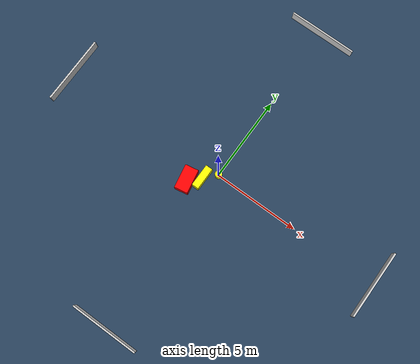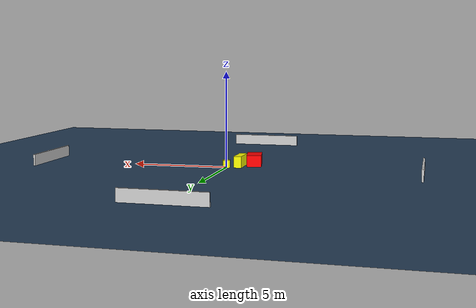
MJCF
<?xml version="1.0" ?>
<mujoco model="generated_environment">
  <option timestep="0.01" integrator="RK4" cone="elliptic"/>
  <default>
    <geom density="1"/>
  </default>
  <asset>
    <texture builtin="gradient" height="3072" name="skybox" rgb1="0.3 0.5 0.7" rgb2="0 0 0" type="skybox" width="512"/>
    <texture builtin="checker" height="300" name="groundplane" rgb1="0.2 0.3 0.4" rgb2="0.1 0.2 0.3" type="2d" width="300"/>
    <material name="groundplane" reflectance="0.2" texrepeat="5 5" texture="groundplane"/>
  </asset>
  <worldbody>
    <light dir="0 0 -1" directional="true" pos="0 0 1.5"/>
    <geom condim="3" friction="0.5 0.005 0.001" material="groundplane" name="floor" pos="0 0 0" size="0 0 0.05" type="plane"/>
    <body name="walls">
      <geom name="wall_1" condim="4" pos="-10.0 0.0 0.3" rgba="0.800000011920929 0.800000011920929 0.800000011920929 1.0" size="0.05 2.0 0.3" type="box"/>
      <geom name="wall_2" condim="4" pos="10.0 0.0 0.3" rgba="0.800000011920929 0.800000011920929 0.800000011920929 1.0" size="0.05 2.0 0.3" type="box"/>
      <geom name="wall_3" condim="4" pos="0.0 -10.0 0.3" rgba="0.800000011920929 0.800000011920929 0.800000011920929 1.0" size="2.0 0.05 0.3" type="box"/>
      <geom name="wall_4" condim="4" pos="0.0 10.0 0.3" rgba="0.800000011920929 0.800000011920929 0.800000011920929 1.0" size="2.0 0.05 0.3" type="box"/>
    </body>
    <body name="robot">
      <joint name="joint_x" type="slide" pos="0 0 0" axis="1 0 0"/>
      <joint name="joint_y" type="slide" pos="0 0 0" axis="0 1 0"/>
      <geom name="robot" type="cylinder" pos="0.0 0.0 0.2" size="0.2 0.2 0.0" mass="5.0" friction="1.0 0.005 0.0001" condim="4" rgba="1.0 1.0 0.0 1.0"/>
    </body>
    <body name="obstacle_1_movable">
      <geom name="obstacle_1_movable" condim="4" pos="-0.6032009194646112 -0.6653495641711565 0.3" euler="0 0 179.76485856507026" friction="0.0 0.005 0.001" rgba="1.0 1.0 0.0 1.0" size="0.20129302113888334 0.650740559313403 0.3" type="box" mass="0.1"/>
      <joint type="free"/>
    </body>
    <body name="obstacle_2_static">
      <geom name="obstacle_2_static" condim="4" pos="-1.2279338840785836 -1.2431032555892578 0.3" euler="0 0 190.29917659446437" friction="0.0 0.005 0.001" rgba="1.0 0.0 0.0 1.0" size="0.3863638239496303 0.6890129793101287 0.3" type="box"/>
    </body>
  </worldbody>
  <actuator>
    <motor name="actuator_x" joint="joint_x" gear="1" ctrlrange="-1 1"/>
    <motor name="actuator_y" joint="joint_y" gear="1" ctrlrange="-1 1"/>
  </actuator>
</mujoco>
